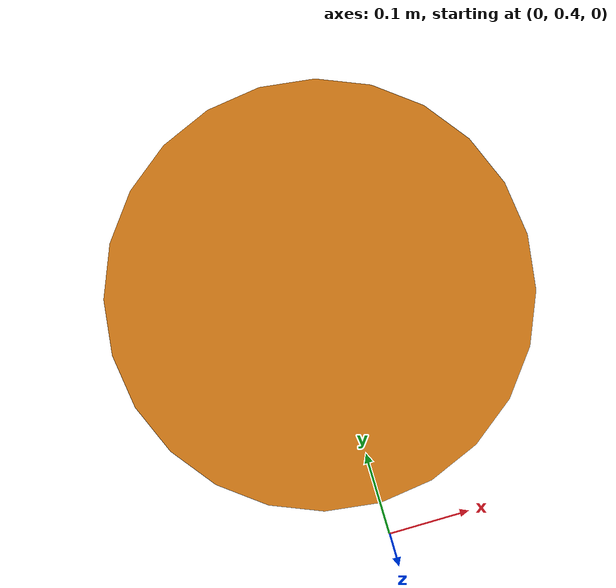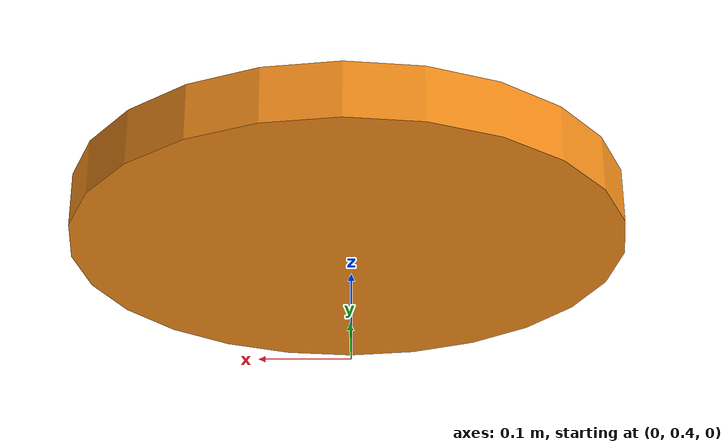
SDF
<?xml version='1.0'?>
<sdf version='1.7'>
  <model name='dual_motion_robot'>
    <static>1</static>
    <pose>0 0 0.01 0 0 0</pose>
    <link name = 'wheel_L'>
      <gravity>1</gravity>
      <self_collide>0</self_collide>
      <kinematic>0</kinematic>
      <enable_wind>0</enable_wind>
      <pose> 0 0.35 0 0 0 0</pose>

      <inertial>
        <mass>0.060</mass>
        <pose> 0 0.35 0 0 0 0</pose>
        <inertia>
          <ixx>1.875</ixx>
          <ixy>1.875</ixy>
          <ixz>1.875</ixz>
          <iyy>1.875</iyy>
          <iyz>1.875</iyz>
          <izz>1.875</izz>
        </inertia>
      </inertial>

      <visual name='visual'>
        <pose>0 0.35 0 0 0 0</pose>
        <geometry>
          <cylinder>
            <radius>0.25</radius>
            <length>0.05</length>
          </cylinder>
        </geometry>
        <material>
          <script>
            <uri>file://media/materials/scripts/gazebo.material</uri>
            <name>Gazebo/Orange</name>
          </script>
        </material>
      </visual>

      <collision name='collision'>
        <max_contacts>10</max_contacts>
        <pose>0 0.35 0 0 0 0</pose>
        <geometry>
          <cylinder>
            <radius>0.25</radius>
            <length>0.05</length>
          </cylinder>
        </geometry>
        <surface>
          <friction>
            <ode>
              <mu>0.8</mu>
              <mu2>0.8</mu2>
              <fdir1>0 0 0</fdir1>
              <slip1>0.5</slip1>
              <slip2>0.5</slip2>
            </ode>
            <torsional>
              <coefficient>1</coefficient>
              <patch_radius>300</patch_radius>
              <surface_radius>0.0327</surface_radius>
              <use_patch_radius>true</use_patch_radius>
              <ode>
                <slip>0</slip>
              </ode>
            </torsional>
          </friction>

          <contact>
            <ode>
              <soft_cfm>0</soft_cfm>
              <soft_erp>0.2</soft_erp>
              <kp>1200000000</kp>
              <kd>1</kd>
              <max_vel>1000</max_vel>
              <min_depth>0</min_depth>
            </ode>
          </contact>
        </surface>
      </collision>

    </link>
  </model>
</sdf>
